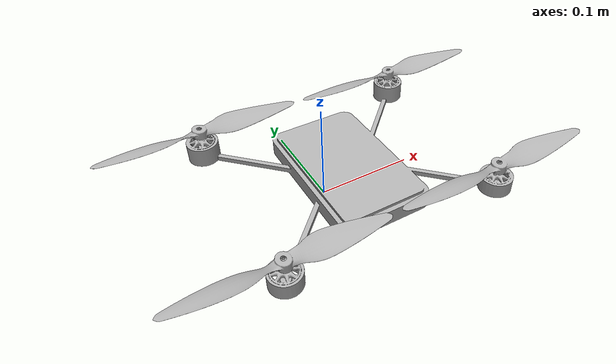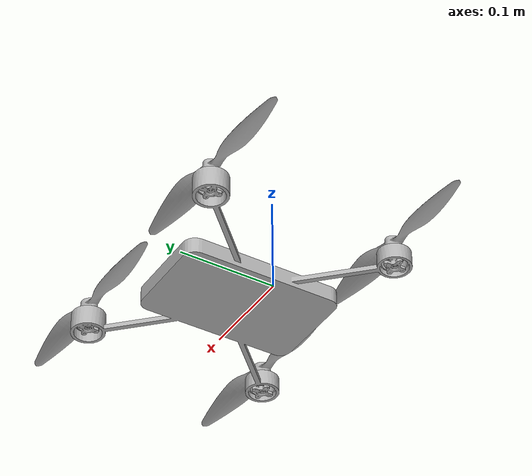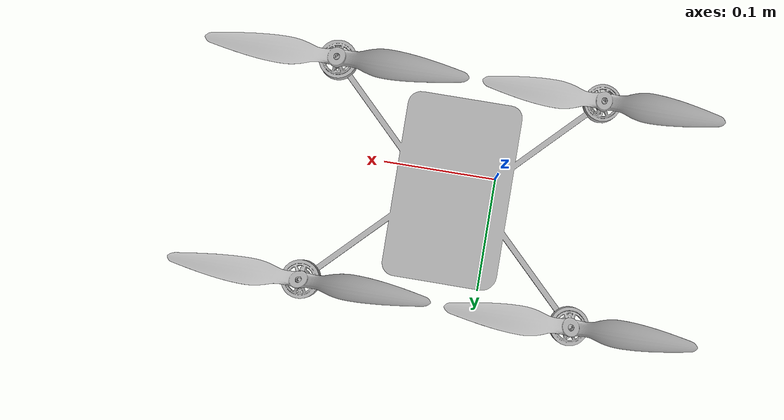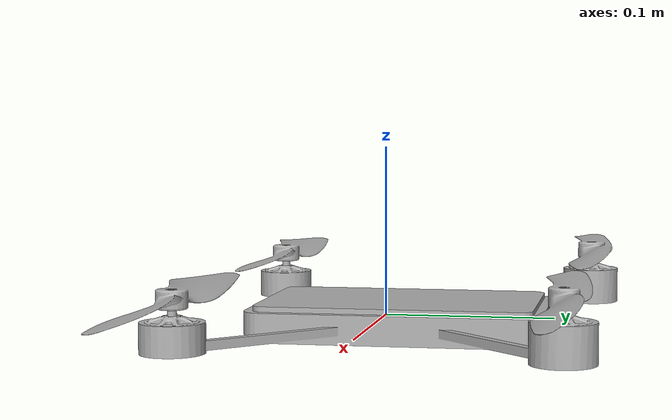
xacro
<?xml version="1.0" ?>
<robot name="august" xmlns:xacro="http://www.ros.org/wiki/xacro">

<xacro:include filename="$(find august_description)/urdf/materials.xacro" />
<xacro:include filename="$(find august_description)/urdf/august.trans" />
<xacro:include filename="$(find august_description)/urdf/august.gazebo" />
<link name="base_link">
  <inertial>
    <origin xyz="0.0367840763564357 0.0188810759037174 0.006751541549144135" rpy="0 0 0"/>
    <mass value="0.2085309750042539"/>
    <inertia ixx="0.000917" iyy="0.000923" izz="0.001817" ixy="2e-05" iyz="-9e-06" ixz="-0.0"/>
  </inertial>
  <visual>
    <origin xyz="0 0 0" rpy="0 0 0"/>
    <geometry>
      <mesh filename="package://august_description/meshes/base_link.stl" scale="0.001 0.001 0.001"/>
    </geometry>
    <material name="silver"/>
  </visual>
  <collision>
    <origin xyz="0 0 -0.05" rpy="0 0 0"/>
    <geometry>
      <mesh filename="package://august_description/meshes/base_link.stl" scale="0.001 0.001 0.001"/>
    </geometry>
  </collision>
</link>

<link name="a`_1">
  <inertial>
    <origin xyz="-2.725265012409883e-07 -4.636414164538305e-07 -0.005530056891346984" rpy="0 0 0"/>
    <mass value="0.014067889406911494"/>
    <inertia ixx="4.6e-05" iyy="1e-06" izz="4.7e-05" ixy="-4e-06" iyz="0.0" ixz="-0.0"/>
  </inertial>
  <visual>
    <origin xyz="0.082471 0.081741 -0.032559" rpy="0 0 0"/>
    <geometry>
      <mesh filename="package://august_description/meshes/a`_1.stl" scale="0.001 0.001 0.001"/>
    </geometry>
    <material name="silver"/>
  </visual>
  <collision>
    <origin xyz="0.082471 0.081741 -0.032559" rpy="0 0 0"/>
    <geometry>
      <mesh filename="package://august_description/meshes/a`_1.stl" scale="0.001 0.001 0.001"/>
    </geometry>
  </collision>
</link>

<link name="b_1">
  <inertial>
    <origin xyz="6.271052868517257e-07 1.3341108107134403e-07 -0.005530056412288528" rpy="0 0 0"/>
    <mass value="0.009704804866217201"/>
    <inertia ixx="5e-06" iyy="2.7e-05" izz="3.2e-05" ixy="1.2e-05" iyz="0.0" ixz="-0.0"/>
  </inertial>
  <visual>
    <origin xyz="0.084450 -0.117659 -0.037559" rpy="0 0 0"/>
    <geometry>
      <mesh filename="package://august_description/meshes/b_1.stl" scale="0.001 0.001 0.001"/>
    </geometry>
    <material name="silver"/>
  </visual>
  <collision>
    <origin xyz="0.084450 -0.117659 -0.037559" rpy="0 0 0"/>
    <geometry>
      <mesh filename="package://august_description/meshes/b_1.stl" scale="0.001 0.001 0.001"/>
    </geometry>
  </collision>
</link>

<link name="b`_1">
  <inertial>
    <origin xyz="-1.112784039081216e-07 3.4862018932768635e-07 -0.005530056412289014" rpy="0 0 0"/>
    <mass value="0.014067889406911485"/>
    <inertia ixx="2.1e-05" iyy="2.6e-05" izz="4.7e-05" ixy="-2.3e-05" iyz="0.0" ixz="0.0"/>
  </inertial>
  <visual>
    <origin xyz="-0.154898 -0.114909 -0.037559" rpy="0 0 0"/>
    <geometry>
      <mesh filename="package://august_description/meshes/b`_1.stl" scale="0.001 0.001 0.001"/>
    </geometry>
    <material name="silver"/>
  </visual>
  <collision>
    <origin xyz="-0.154898 -0.114909 -0.037559" rpy="0 0 0"/>
    <geometry>
      <mesh filename="package://august_description/meshes/b`_1.stl" scale="0.001 0.001 0.001"/>
    </geometry>
  </collision>
</link>

<link name="a_1">
  <inertial>
    <origin xyz="3.912257227900451e-07 4.060967898622536e-07 -0.00552943728347341" rpy="0 0 0"/>
    <mass value="0.014067889406911461"/>
    <inertia ixx="4e-06" iyy="4.3e-05" izz="4.7e-05" ixy="-1.2e-05" iyz="0.0" ixz="-0.0"/>
  </inertial>
  <visual>
    <origin xyz="-0.154704 0.082227 -0.032573" rpy="0 0 0"/>
    <geometry>
      <mesh filename="package://august_description/meshes/a_1.stl" scale="0.001 0.001 0.001"/>
    </geometry>
    <material name="silver"/>
  </visual>
  <collision>
    <origin xyz="-0.154704 0.082227 -0.032573" rpy="0 0 0"/>
    <geometry>
      <mesh filename="package://august_description/meshes/a_1.stl" scale="0.001 0.001 0.001"/>
    </geometry>
  </collision>
</link>

<joint name="revolute_47" type="continuous">
  <origin xyz="-0.082471 -0.081741 0.032559" rpy="0 0 0"/>
  <parent link="base_link"/>
  <child link="a`_1"/>
  <axis xyz="-0.0 0.0 -1.0"/>
  <limit effort="1.0" velocity="100.0"/>
  <dynamics damping="0.01" friction="0.001"/>
</joint>

<joint name="revolute_48" type="continuous">
  <origin xyz="-0.084450 0.117659 0.037559" rpy="0 0 0"/>
  <parent link="base_link"/>
  <child link="b_1"/>
  <axis xyz="0.0 0.0 -1.0"/>
  <limit effort="1.0" velocity="100.0"/>
  <dynamics damping="0.01" friction="0.001"/>
</joint>

<joint name="revolute_49" type="continuous">
  <origin xyz="0.154898 0.114909 0.037559" rpy="0 0 0"/>
  <parent link="base_link"/>
  <child link="b`_1"/>
  <axis xyz="0.0 -0.0 -1.0"/>
  <limit effort="1.0" velocity="100.0"/>
  <dynamics damping="0.01" friction="0.001"/>
</joint>

<joint name="revolute_50" type="continuous">
  <origin xyz="0.154704 -0.082227 0.032573" rpy="0 0 0"/>
  <parent link="base_link"/>
  <child link="a_1"/>
  <axis xyz="-0.0 -0.0 -1.0"/>
  <limit effort="1.0" velocity="100.0"/>
  <dynamics damping="0.01" friction="0.001"/>
</joint>

<gazebo>
  <plugin name="gazebo_ros_control" filename="libgazebo_ros_control.so"/>
</gazebo>

<gazebo reference="base_link">
  <self_collide>false</self_collide>
</gazebo>
<gazebo reference="a`_1">
  <self_collide>false</self_collide>
</gazebo>
<gazebo reference="b_1">
  <self_collide>false</self_collide>
</gazebo>
<gazebo reference="b`_1">
  <self_collide>false</self_collide>
</gazebo>
<gazebo reference="a_1">
  <self_collide>false</self_collide>
</gazebo>

<gazebo>
    <sensor type="imu" name="imu_sensor">
      <always_on>true</always_on>
      <update_rate>50</update_rate>
      <visualize>false</visualize>
      <topic>imu/data</topic>
      <plugin name="imu_plugin" filename="libgazebo_ros_imu_sensor.so">
        <ros>
          <namespace>/august</namespace>
          <remapping>~/out:=imu/data</remapping>
        </ros>
        <bodyName>base_link</bodyName>
        <updateRate>50.0</updateRate>
        <gaussianNoise>0.0</gaussianNoise>
        <xyzOffset>0 0 0</xyzOffset>
        <rpyOffset>0 0 0</rpyOffset>
      </plugin>
    </sensor>
</gazebo>

</robot>

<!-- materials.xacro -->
<robot name="august" xmlns:xacro="http://www.ros.org/wiki/xacro" >

<material name="silver">
  <color rgba="0.700 0.700 0.700 1.000"/>
</material>

</robot>

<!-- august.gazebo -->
<robot name="august" xmlns:xacro="http://www.ros.org/wiki/xacro" >

<xacro:property name="body_color" value="Gazebo/Silver" />

<gazebo reference="base_link">
  <material>${body_color}</material>
  <mu1>0.2</mu1>
  <mu2>0.2</mu2>
  <selfCollide>true</selfCollide>
  <gravity>true</gravity>
</gazebo>

<gazebo reference="a`_1">
  <material>${body_color}</material>
  <mu1>0.2</mu1>
  <mu2>0.2</mu2>
  <selfCollide>true</selfCollide>
</gazebo>

<gazebo reference="b_1">
  <material>${body_color}</material>
  <mu1>0.2</mu1>
  <mu2>0.2</mu2>
  <selfCollide>true</selfCollide>
</gazebo>

<gazebo reference="b`_1">
  <material>${body_color}</material>
  <mu1>0.2</mu1>
  <mu2>0.2</mu2>
  <selfCollide>true</selfCollide>
</gazebo>

<gazebo reference="a_1">
  <material>${body_color}</material>
  <mu1>0.2</mu1>
  <mu2>0.2</mu2>
  <selfCollide>true</selfCollide>
</gazebo>

	<!-- Define the lift-Drag plugin -->
<gazebo>
<!-- Provide a Positive Velocity -->
	<plugin name="quad_prop1" filename="libLiftDragPlugin.so">
	<a0>0.1</a0>
	<cla>0.1</cla>
	<cda>0.01</cda>
	<cma>0.0</cma>
	<alpha_stall>0.2</alpha_stall>
	<cla_stall>-0.2</cla_stall>
	<cda_stall>1.0</cda_stall>
	<cma_stall>0.0</cma_stall>
	<cp>0 0.5 0</cp>
	<area>0.762</area>
	<air_density>1.2041</air_density>
	<forward>1 0 0</forward>
	<upward>0 0 -1</upward>
	<link_name>a`_1</link_name>
	<control_joint>joint_front_right_prop</control_joint>
	</plugin>
</gazebo>
<gazebo>
<!-- Provide a Negative Velocity -->
	<plugin name="quad_prop2" filename="libLiftDragPlugin.so">
	<a0>0.1</a0>
	<cla>0.1</cla>
	<cda>0.01</cda>
	<cma>0.0</cma>
	<alpha_stall>0.2</alpha_stall>
	<cla_stall>-0.2</cla_stall>
	<cda_stall>1.0</cda_stall>
	<cma_stall>0.0</cma_stall>
	<cp>0 0.5 0</cp>
	<area>0.762</area>
	<air_density>1.2041</air_density>
	<forward>1 0 0</forward>
	<upward>0 0 1</upward>
	<link_name>a_1</link_name>
	<control_joint>joint_front_left_prop</control_joint>
	</plugin>
</gazebo>
<gazebo>
<!-- Provide a Negative Velocity -->
	<plugin name="quad_prop3" filename="libLiftDragPlugin.so">
	<a0>0.1</a0>
	<cla>0.1</cla>
	<cda>0.01</cda>
	<cma>0.0</cma>
	<alpha_stall>0.2</alpha_stall>
	<cla_stall>-0.2</cla_stall>
	<cda_stall>1.0</cda_stall>
	<cma_stall>0.0</cma_stall>
	<cp>0 0.5 0</cp>
	<area>0.762</area>
	<air_density>1.2041</air_density>
	<forward>1 0 0</forward>
	<upward>0 0 1</upward>
	<link_name>b`_1</link_name>
	<control_joint>joint_back_right_prop</control_joint>
	</plugin>
</gazebo>
<gazebo>
<!-- Provide a Positive Velocity -->
	<plugin name="quad_prop4" filename="libLiftDragPlugin.so">
	<a0>0.1</a0>
	<cla>0.1</cla>
	<cda>0.01</cda>
	<cma>0.0</cma>
	<alpha_stall>0.2</alpha_stall>
	<cla_stall>-0.2</cla_stall>
	<cda_stall>1.0</cda_stall>
	<cma_stall>0.0</cma_stall>
	<cp>0 0.5 0</cp>
	<area>0.762</area>
	<air_density>1.2041</air_density>
	<forward>1 0 0</forward>
	<upward>0 0 -1</upward>
	<link_name>b_1</link_name>
	<control_joint>joint_back_left_prop</control_joint>
	</plugin>
</gazebo>
<gazebo>
  <plugin name="gazebo_ros_control" filename="libgazebo_ros_control.so">
    <robotNamespace>/august</robotNamespace>
  </plugin>
</gazebo>
</robot>
